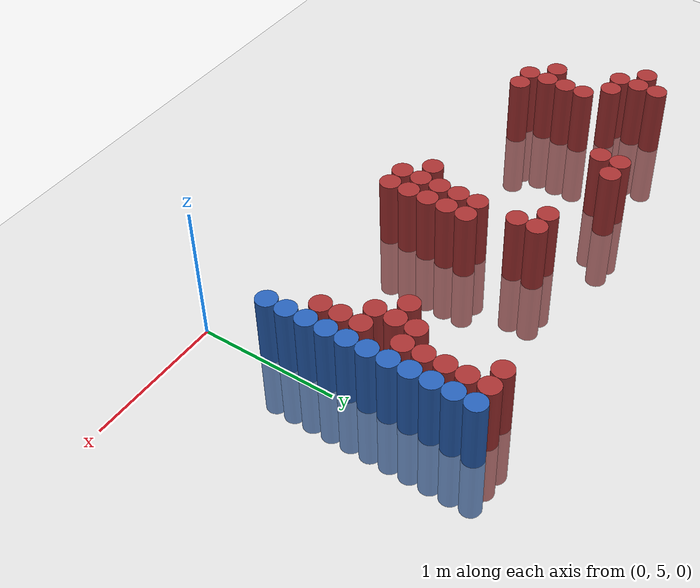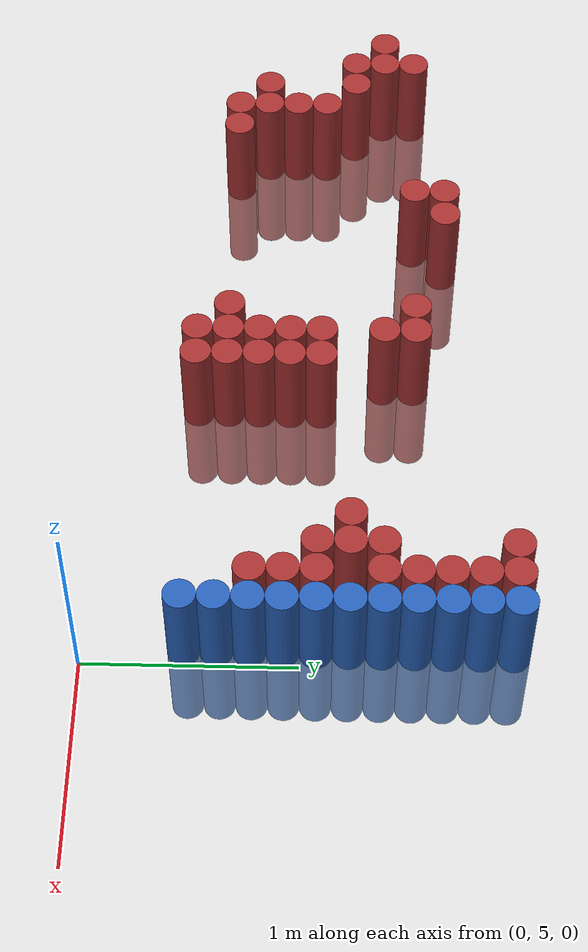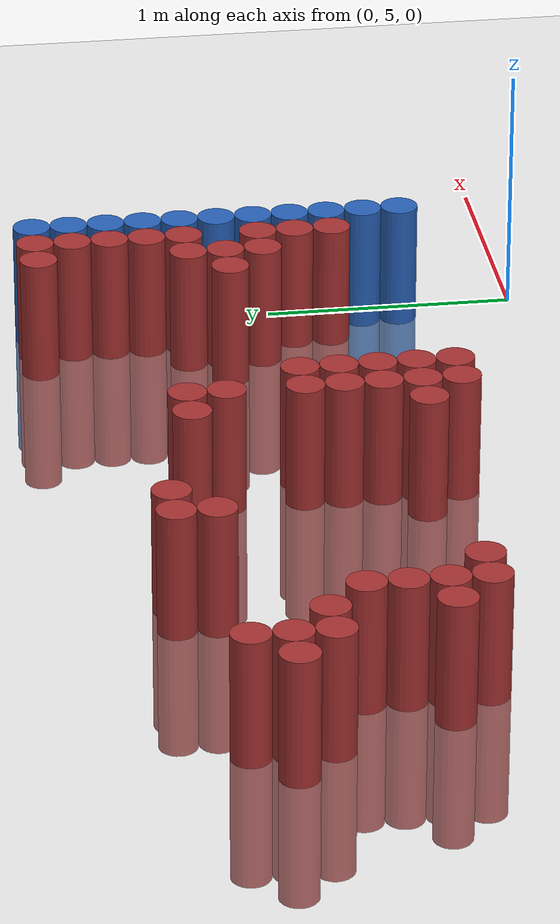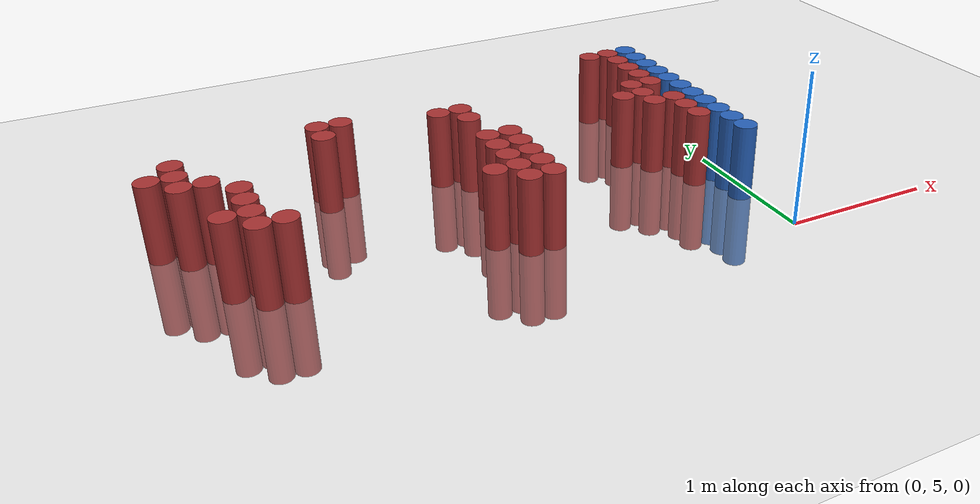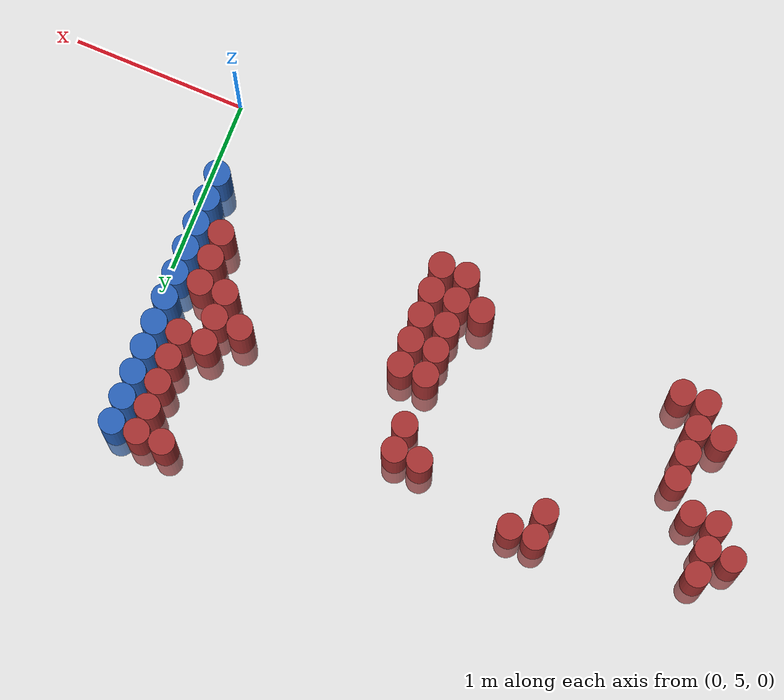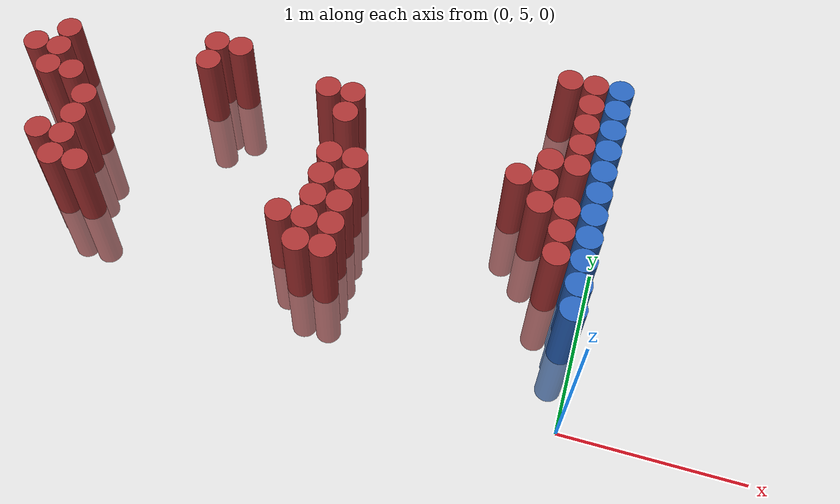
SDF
<sdf version="1.6">
 <world name="default">
  <model name="ground_plane">
   <static>1</static>
   <link name="link">
    <collision name="collision">
     <geometry><plane><normal>0 0 1</normal><size>100 100</size></plane></geometry>
     <surface><friction><ode><mu>100</mu><mu2>50</mu2></ode></friction></surface>
    </collision>
    <visual name="visual">
     <cast_shadows>0</cast_shadows>
     <geometry><plane><normal>0 0 1</normal><size>100 100</size></plane></geometry>
     <material>
      <script><uri>file://media/materials/scripts/gazebo.material</uri><name>Gazebo/Grey</name></script>
     </material>
    </visual>
   </link>
  </model>
  <model name="unit_cylinder_151">
   <static>1</static>
   <pose>-3.525000 6.375000 0.000000 0.000000 0.000000 0.000000</pose>
   <link name="link">
    <inertial>
     <mass>1</mass>
     <inertia><ixx>0.145833</ixx><ixy>0</ixy><ixz>0</ixz><iyy>0.145833</iyy><iyz>0</iyz><izz>0.125</izz></inertia>
    </inertial>
    <collision name="collision">
     <geometry><cylinder><radius>0.075000</radius><length>1</length></cylinder></geometry>
    </collision>
    <visual name="visual">
     <geometry><cylinder><radius>0.075000</radius><length>1</length></cylinder></geometry>
     <material>
      <ambient>0.648000 0.192000 0.192000 1</ambient>
      <diffuse>0.648000 0.192000 0.192000 1</diffuse>
     </material>
     <material>
      <script><name>Gazebo/Grey</name><uri>file://media/materials/scripts/gazebo.material</uri></script>
     </material>
    </visual>
   </link>
  </model>
  <model name="unit_cylinder_154">
   <static>1</static>
   <pose>-3.375000 6.225000 0.000000 0.000000 0.000000 0.000000</pose>
   <link name="link">
    <inertial>
     <mass>1</mass>
     <inertia><ixx>0.145833</ixx><ixy>0</ixy><ixz>0</ixz><iyy>0.145833</iyy><iyz>0</iyz><izz>0.125</izz></inertia>
    </inertial>
    <collision name="collision">
     <geometry><cylinder><radius>0.075000</radius><length>1</length></cylinder></geometry>
    </collision>
    <visual name="visual">
     <geometry><cylinder><radius>0.075000</radius><length>1</length></cylinder></geometry>
     <material>
      <ambient>0.648000 0.192000 0.192000 1</ambient>
      <diffuse>0.648000 0.192000 0.192000 1</diffuse>
     </material>
     <material>
      <script><name>Gazebo/Grey</name><uri>file://media/materials/scripts/gazebo.material</uri></script>
     </material>
    </visual>
   </link>
  </model>
  <model name="unit_cylinder_155">
   <static>1</static>
   <pose>-3.375000 6.375000 0.000000 0.000000 0.000000 0.000000</pose>
   <link name="link">
    <inertial>
     <mass>1</mass>
     <inertia><ixx>0.145833</ixx><ixy>0</ixy><ixz>0</ixz><iyy>0.145833</iyy><iyz>0</iyz><izz>0.125</izz></inertia>
    </inertial>
    <collision name="collision">
     <geometry><cylinder><radius>0.075000</radius><length>1</length></cylinder></geometry>
    </collision>
    <visual name="visual">
     <geometry><cylinder><radius>0.075000</radius><length>1</length></cylinder></geometry>
     <material>
      <ambient>0.648000 0.192000 0.192000 1</ambient>
      <diffuse>0.648000 0.192000 0.192000 1</diffuse>
     </material>
     <material>
      <script><name>Gazebo/Grey</name><uri>file://media/materials/scripts/gazebo.material</uri></script>
     </material>
    </visual>
   </link>
  </model>
  <model name="unit_cylinder_156">
   <static>1</static>
   <pose>-3.375000 6.525000 0.000000 0.000000 0.000000 0.000000</pose>
   <link name="link">
    <inertial>
     <mass>1</mass>
     <inertia><ixx>0.145833</ixx><ixy>0</ixy><ixz>0</ixz><iyy>0.145833</iyy><iyz>0</iyz><izz>0.125</izz></inertia>
    </inertial>
    <collision name="collision">
     <geometry><cylinder><radius>0.075000</radius><length>1</length></cylinder></geometry>
    </collision>
    <visual name="visual">
     <geometry><cylinder><radius>0.075000</radius><length>1</length></cylinder></geometry>
     <material>
      <ambient>0.648000 0.192000 0.192000 1</ambient>
      <diffuse>0.648000 0.192000 0.192000 1</diffuse>
     </material>
     <material>
      <script><name>Gazebo/Grey</name><uri>file://media/materials/scripts/gazebo.material</uri></script>
     </material>
    </visual>
   </link>
  </model>
  <model name="unit_cylinder_159">
   <static>1</static>
   <pose>-3.225000 5.775000 0.000000 0.000000 0.000000 0.000000</pose>
   <link name="link">
    <inertial>
     <mass>1</mass>
     <inertia><ixx>0.145833</ixx><ixy>0</ixy><ixz>0</ixz><iyy>0.145833</iyy><iyz>0</iyz><izz>0.125</izz></inertia>
    </inertial>
    <collision name="collision">
     <geometry><cylinder><radius>0.075000</radius><length>1</length></cylinder></geometry>
    </collision>
    <visual name="visual">
     <geometry><cylinder><radius>0.075000</radius><length>1</length></cylinder></geometry>
     <material>
      <ambient>0.648000 0.192000 0.192000 1</ambient>
      <diffuse>0.648000 0.192000 0.192000 1</diffuse>
     </material>
     <material>
      <script><name>Gazebo/Grey</name><uri>file://media/materials/scripts/gazebo.material</uri></script>
     </material>
    </visual>
   </link>
  </model>
  <model name="unit_cylinder_160">
   <static>1</static>
   <pose>-3.225000 6.225000 0.000000 0.000000 0.000000 0.000000</pose>
   <link name="link">
    <inertial>
     <mass>1</mass>
     <inertia><ixx>0.145833</ixx><ixy>0</ixy><ixz>0</ixz><iyy>0.145833</iyy><iyz>0</iyz><izz>0.125</izz></inertia>
    </inertial>
    <collision name="collision">
     <geometry><cylinder><radius>0.075000</radius><length>1</length></cylinder></geometry>
    </collision>
    <visual name="visual">
     <geometry><cylinder><radius>0.075000</radius><length>1</length></cylinder></geometry>
     <material>
      <ambient>0.648000 0.192000 0.192000 1</ambient>
      <diffuse>0.648000 0.192000 0.192000 1</diffuse>
     </material>
     <material>
      <script><name>Gazebo/Grey</name><uri>file://media/materials/scripts/gazebo.material</uri></script>
     </material>
    </visual>
   </link>
  </model>
  <model name="unit_cylinder_165">
   <static>1</static>
   <pose>-3.075000 5.625000 0.000000 0.000000 0.000000 0.000000</pose>
   <link name="link">
    <inertial>
     <mass>1</mass>
     <inertia><ixx>0.145833</ixx><ixy>0</ixy><ixz>0</ixz><iyy>0.145833</iyy><iyz>0</iyz><izz>0.125</izz></inertia>
    </inertial>
    <collision name="collision">
     <geometry><cylinder><radius>0.075000</radius><length>1</length></cylinder></geometry>
    </collision>
    <visual name="visual">
     <geometry><cylinder><radius>0.075000</radius><length>1</length></cylinder></geometry>
     <material>
      <ambient>0.648000 0.192000 0.192000 1</ambient>
      <diffuse>0.648000 0.192000 0.192000 1</diffuse>
     </material>
     <material>
      <script><name>Gazebo/Grey</name><uri>file://media/materials/scripts/gazebo.material</uri></script>
     </material>
    </visual>
   </link>
  </model>
  <model name="unit_cylinder_166">
   <static>1</static>
   <pose>-3.075000 5.775000 0.000000 0.000000 0.000000 0.000000</pose>
   <link name="link">
    <inertial>
     <mass>1</mass>
     <inertia><ixx>0.145833</ixx><ixy>0</ixy><ixz>0</ixz><iyy>0.145833</iyy><iyz>0</iyz><izz>0.125</izz></inertia>
    </inertial>
    <collision name="collision">
     <geometry><cylinder><radius>0.075000</radius><length>1</length></cylinder></geometry>
    </collision>
    <visual name="visual">
     <geometry><cylinder><radius>0.075000</radius><length>1</length></cylinder></geometry>
     <material>
      <ambient>0.648000 0.192000 0.192000 1</ambient>
      <diffuse>0.648000 0.192000 0.192000 1</diffuse>
     </material>
     <material>
      <script><name>Gazebo/Grey</name><uri>file://media/materials/scripts/gazebo.material</uri></script>
     </material>
    </visual>
   </link>
  </model>
  <model name="unit_cylinder_167">
   <static>1</static>
   <pose>-3.075000 5.925000 0.000000 0.000000 0.000000 0.000000</pose>
   <link name="link">
    <inertial>
     <mass>1</mass>
     <inertia><ixx>0.145833</ixx><ixy>0</ixy><ixz>0</ixz><iyy>0.145833</iyy><iyz>0</iyz><izz>0.125</izz></inertia>
    </inertial>
    <collision name="collision">
     <geometry><cylinder><radius>0.075000</radius><length>1</length></cylinder></geometry>
    </collision>
    <visual name="visual">
     <geometry><cylinder><radius>0.075000</radius><length>1</length></cylinder></geometry>
     <material>
      <ambient>0.648000 0.192000 0.192000 1</ambient>
      <diffuse>0.648000 0.192000 0.192000 1</diffuse>
     </material>
     <material>
      <script><name>Gazebo/Grey</name><uri>file://media/materials/scripts/gazebo.material</uri></script>
     </material>
    </visual>
   </link>
  </model>
  <model name="unit_cylinder_168">
   <static>1</static>
   <pose>-3.075000 6.075000 0.000000 0.000000 0.000000 0.000000</pose>
   <link name="link">
    <inertial>
     <mass>1</mass>
     <inertia><ixx>0.145833</ixx><ixy>0</ixy><ixz>0</ixz><iyy>0.145833</iyy><iyz>0</iyz><izz>0.125</izz></inertia>
    </inertial>
    <collision name="collision">
     <geometry><cylinder><radius>0.075000</radius><length>1</length></cylinder></geometry>
    </collision>
    <visual name="visual">
     <geometry><cylinder><radius>0.075000</radius><length>1</length></cylinder></geometry>
     <material>
      <ambient>0.648000 0.192000 0.192000 1</ambient>
      <diffuse>0.648000 0.192000 0.192000 1</diffuse>
     </material>
     <material>
      <script><name>Gazebo/Grey</name><uri>file://media/materials/scripts/gazebo.material</uri></script>
     </material>
    </visual>
   </link>
  </model>
  <model name="unit_cylinder_170">
   <static>1</static>
   <pose>-2.925000 5.625000 0.000000 0.000000 0.000000 0.000000</pose>
   <link name="link">
    <inertial>
     <mass>1</mass>
     <inertia><ixx>0.145833</ixx><ixy>0</ixy><ixz>0</ixz><iyy>0.145833</iyy><iyz>0</iyz><izz>0.125</izz></inertia>
    </inertial>
    <collision name="collision">
     <geometry><cylinder><radius>0.075000</radius><length>1</length></cylinder></geometry>
    </collision>
    <visual name="visual">
     <geometry><cylinder><radius>0.075000</radius><length>1</length></cylinder></geometry>
     <material>
      <ambient>0.648000 0.192000 0.192000 1</ambient>
      <diffuse>0.648000 0.192000 0.192000 1</diffuse>
     </material>
     <material>
      <script><name>Gazebo/Grey</name><uri>file://media/materials/scripts/gazebo.material</uri></script>
     </material>
    </visual>
   </link>
  </model>
  <model name="unit_cylinder_171">
   <static>1</static>
   <pose>-2.475000 6.525000 0.000000 0.000000 0.000000 0.000000</pose>
   <link name="link">
    <inertial>
     <mass>1</mass>
     <inertia><ixx>0.145833</ixx><ixy>0</ixy><ixz>0</ixz><iyy>0.145833</iyy><iyz>0</iyz><izz>0.125</izz></inertia>
    </inertial>
    <collision name="collision">
     <geometry><cylinder><radius>0.075000</radius><length>1</length></cylinder></geometry>
    </collision>
    <visual name="visual">
     <geometry><cylinder><radius>0.075000</radius><length>1</length></cylinder></geometry>
     <material>
      <ambient>0.648000 0.192000 0.192000 1</ambient>
      <diffuse>0.648000 0.192000 0.192000 1</diffuse>
     </material>
     <material>
      <script><name>Gazebo/Grey</name><uri>file://media/materials/scripts/gazebo.material</uri></script>
     </material>
    </visual>
   </link>
  </model>
  <model name="unit_cylinder_172">
   <static>1</static>
   <pose>-2.475000 6.675000 0.000000 0.000000 0.000000 0.000000</pose>
   <link name="link">
    <inertial>
     <mass>1</mass>
     <inertia><ixx>0.145833</ixx><ixy>0</ixy><ixz>0</ixz><iyy>0.145833</iyy><iyz>0</iyz><izz>0.125</izz></inertia>
    </inertial>
    <collision name="collision">
     <geometry><cylinder><radius>0.075000</radius><length>1</length></cylinder></geometry>
    </collision>
    <visual name="visual">
     <geometry><cylinder><radius>0.075000</radius><length>1</length></cylinder></geometry>
     <material>
      <ambient>0.648000 0.192000 0.192000 1</ambient>
      <diffuse>0.648000 0.192000 0.192000 1</diffuse>
     </material>
     <material>
      <script><name>Gazebo/Grey</name><uri>file://media/materials/scripts/gazebo.material</uri></script>
     </material>
    </visual>
   </link>
  </model>
  <model name="unit_cylinder_175">
   <static>1</static>
   <pose>-2.325000 6.675000 0.000000 0.000000 0.000000 0.000000</pose>
   <link name="link">
    <inertial>
     <mass>1</mass>
     <inertia><ixx>0.145833</ixx><ixy>0</ixy><ixz>0</ixz><iyy>0.145833</iyy><iyz>0</iyz><izz>0.125</izz></inertia>
    </inertial>
    <collision name="collision">
     <geometry><cylinder><radius>0.075000</radius><length>1</length></cylinder></geometry>
    </collision>
    <visual name="visual">
     <geometry><cylinder><radius>0.075000</radius><length>1</length></cylinder></geometry>
     <material>
      <ambient>0.648000 0.192000 0.192000 1</ambient>
      <diffuse>0.648000 0.192000 0.192000 1</diffuse>
     </material>
     <material>
      <script><name>Gazebo/Grey</name><uri>file://media/materials/scripts/gazebo.material</uri></script>
     </material>
    </visual>
   </link>
  </model>
  <model name="unit_cylinder_178">
   <static>1</static>
   <pose>-1.725000 5.625000 0.000000 0.000000 0.000000 0.000000</pose>
   <link name="link">
    <inertial>
     <mass>1</mass>
     <inertia><ixx>0.145833</ixx><ixy>0</ixy><ixz>0</ixz><iyy>0.145833</iyy><iyz>0</iyz><izz>0.125</izz></inertia>
    </inertial>
    <collision name="collision">
     <geometry><cylinder><radius>0.075000</radius><length>1</length></cylinder></geometry>
    </collision>
    <visual name="visual">
     <geometry><cylinder><radius>0.075000</radius><length>1</length></cylinder></geometry>
     <material>
      <ambient>0.648000 0.192000 0.192000 1</ambient>
      <diffuse>0.648000 0.192000 0.192000 1</diffuse>
     </material>
     <material>
      <script><name>Gazebo/Grey</name><uri>file://media/materials/scripts/gazebo.material</uri></script>
     </material>
    </visual>
   </link>
  </model>
  <model name="unit_cylinder_179">
   <static>1</static>
   <pose>-1.725000 6.525000 0.000000 0.000000 0.000000 0.000000</pose>
   <link name="link">
    <inertial>
     <mass>1</mass>
     <inertia><ixx>0.145833</ixx><ixy>0</ixy><ixz>0</ixz><iyy>0.145833</iyy><iyz>0</iyz><izz>0.125</izz></inertia>
    </inertial>
    <collision name="collision">
     <geometry><cylinder><radius>0.075000</radius><length>1</length></cylinder></geometry>
    </collision>
    <visual name="visual">
     <geometry><cylinder><radius>0.075000</radius><length>1</length></cylinder></geometry>
     <material>
      <ambient>0.648000 0.192000 0.192000 1</ambient>
      <diffuse>0.648000 0.192000 0.192000 1</diffuse>
     </material>
     <material>
      <script><name>Gazebo/Grey</name><uri>file://media/materials/scripts/gazebo.material</uri></script>
     </material>
    </visual>
   </link>
  </model>
  <model name="unit_cylinder_183">
   <static>1</static>
   <pose>-1.575000 5.475000 0.000000 0.000000 0.000000 0.000000</pose>
   <link name="link">
    <inertial>
     <mass>1</mass>
     <inertia><ixx>0.145833</ixx><ixy>0</ixy><ixz>0</ixz><iyy>0.145833</iyy><iyz>0</iyz><izz>0.125</izz></inertia>
    </inertial>
    <collision name="collision">
     <geometry><cylinder><radius>0.075000</radius><length>1</length></cylinder></geometry>
    </collision>
    <visual name="visual">
     <geometry><cylinder><radius>0.075000</radius><length>1</length></cylinder></geometry>
     <material>
      <ambient>0.648000 0.192000 0.192000 1</ambient>
      <diffuse>0.648000 0.192000 0.192000 1</diffuse>
     </material>
     <material>
      <script><name>Gazebo/Grey</name><uri>file://media/materials/scripts/gazebo.material</uri></script>
     </material>
    </visual>
   </link>
  </model>
  <model name="unit_cylinder_184">
   <static>1</static>
   <pose>-1.575000 5.625000 0.000000 0.000000 0.000000 0.000000</pose>
   <link name="link">
    <inertial>
     <mass>1</mass>
     <inertia><ixx>0.145833</ixx><ixy>0</ixy><ixz>0</ixz><iyy>0.145833</iyy><iyz>0</iyz><izz>0.125</izz></inertia>
    </inertial>
    <collision name="collision">
     <geometry><cylinder><radius>0.075000</radius><length>1</length></cylinder></geometry>
    </collision>
    <visual name="visual">
     <geometry><cylinder><radius>0.075000</radius><length>1</length></cylinder></geometry>
     <material>
      <ambient>0.648000 0.192000 0.192000 1</ambient>
      <diffuse>0.648000 0.192000 0.192000 1</diffuse>
     </material>
     <material>
      <script><name>Gazebo/Grey</name><uri>file://media/materials/scripts/gazebo.material</uri></script>
     </material>
    </visual>
   </link>
  </model>
  <model name="unit_cylinder_185">
   <static>1</static>
   <pose>-1.575000 5.775000 0.000000 0.000000 0.000000 0.000000</pose>
   <link name="link">
    <inertial>
     <mass>1</mass>
     <inertia><ixx>0.145833</ixx><ixy>0</ixy><ixz>0</ixz><iyy>0.145833</iyy><iyz>0</iyz><izz>0.125</izz></inertia>
    </inertial>
    <collision name="collision">
     <geometry><cylinder><radius>0.075000</radius><length>1</length></cylinder></geometry>
    </collision>
    <visual name="visual">
     <geometry><cylinder><radius>0.075000</radius><length>1</length></cylinder></geometry>
     <material>
      <ambient>0.648000 0.192000 0.192000 1</ambient>
      <diffuse>0.648000 0.192000 0.192000 1</diffuse>
     </material>
     <material>
      <script><name>Gazebo/Grey</name><uri>file://media/materials/scripts/gazebo.material</uri></script>
     </material>
    </visual>
   </link>
  </model>
  <model name="unit_cylinder_186">
   <static>1</static>
   <pose>-1.575000 5.925000 0.000000 0.000000 0.000000 0.000000</pose>
   <link name="link">
    <inertial>
     <mass>1</mass>
     <inertia><ixx>0.145833</ixx><ixy>0</ixy><ixz>0</ixz><iyy>0.145833</iyy><iyz>0</iyz><izz>0.125</izz></inertia>
    </inertial>
    <collision name="collision">
     <geometry><cylinder><radius>0.075000</radius><length>1</length></cylinder></geometry>
    </collision>
    <visual name="visual">
     <geometry><cylinder><radius>0.075000</radius><length>1</length></cylinder></geometry>
     <material>
      <ambient>0.648000 0.192000 0.192000 1</ambient>
      <diffuse>0.648000 0.192000 0.192000 1</diffuse>
     </material>
     <material>
      <script><name>Gazebo/Grey</name><uri>file://media/materials/scripts/gazebo.material</uri></script>
     </material>
    </visual>
   </link>
  </model>
  <model name="unit_cylinder_187">
   <static>1</static>
   <pose>-1.575000 6.075000 0.000000 0.000000 0.000000 0.000000</pose>
   <link name="link">
    <inertial>
     <mass>1</mass>
     <inertia><ixx>0.145833</ixx><ixy>0</ixy><ixz>0</ixz><iyy>0.145833</iyy><iyz>0</iyz><izz>0.125</izz></inertia>
    </inertial>
    <collision name="collision">
     <geometry><cylinder><radius>0.075000</radius><length>1</length></cylinder></geometry>
    </collision>
    <visual name="visual">
     <geometry><cylinder><radius>0.075000</radius><length>1</length></cylinder></geometry>
     <material>
      <ambient>0.648000 0.192000 0.192000 1</ambient>
      <diffuse>0.648000 0.192000 0.192000 1</diffuse>
     </material>
     <material>
      <script><name>Gazebo/Grey</name><uri>file://media/materials/scripts/gazebo.material</uri></script>
     </material>
    </visual>
   </link>
  </model>
  <model name="unit_cylinder_188">
   <static>1</static>
   <pose>-1.575000 6.375000 0.000000 0.000000 0.000000 0.000000</pose>
   <link name="link">
    <inertial>
     <mass>1</mass>
     <inertia><ixx>0.145833</ixx><ixy>0</ixy><ixz>0</ixz><iyy>0.145833</iyy><iyz>0</iyz><izz>0.125</izz></inertia>
    </inertial>
    <collision name="collision">
     <geometry><cylinder><radius>0.075000</radius><length>1</length></cylinder></geometry>
    </collision>
    <visual name="visual">
     <geometry><cylinder><radius>0.075000</radius><length>1</length></cylinder></geometry>
     <material>
      <ambient>0.648000 0.192000 0.192000 1</ambient>
      <diffuse>0.648000 0.192000 0.192000 1</diffuse>
     </material>
     <material>
      <script><name>Gazebo/Grey</name><uri>file://media/materials/scripts/gazebo.material</uri></script>
     </material>
    </visual>
   </link>
  </model>
  <model name="unit_cylinder_189">
   <static>1</static>
   <pose>-1.575000 6.525000 0.000000 0.000000 0.000000 0.000000</pose>
   <link name="link">
    <inertial>
     <mass>1</mass>
     <inertia><ixx>0.145833</ixx><ixy>0</ixy><ixz>0</ixz><iyy>0.145833</iyy><iyz>0</iyz><izz>0.125</izz></inertia>
    </inertial>
    <collision name="collision">
     <geometry><cylinder><radius>0.075000</radius><length>1</length></cylinder></geometry>
    </collision>
    <visual name="visual">
     <geometry><cylinder><radius>0.075000</radius><length>1</length></cylinder></geometry>
     <material>
      <ambient>0.648000 0.192000 0.192000 1</ambient>
      <diffuse>0.648000 0.192000 0.192000 1</diffuse>
     </material>
     <material>
      <script><name>Gazebo/Grey</name><uri>file://media/materials/scripts/gazebo.material</uri></script>
     </material>
    </visual>
   </link>
  </model>
  <model name="unit_cylinder_193">
   <static>1</static>
   <pose>-1.425000 5.475000 0.000000 0.000000 0.000000 0.000000</pose>
   <link name="link">
    <inertial>
     <mass>1</mass>
     <inertia><ixx>0.145833</ixx><ixy>0</ixy><ixz>0</ixz><iyy>0.145833</iyy><iyz>0</iyz><izz>0.125</izz></inertia>
    </inertial>
    <collision name="collision">
     <geometry><cylinder><radius>0.075000</radius><length>1</length></cylinder></geometry>
    </collision>
    <visual name="visual">
     <geometry><cylinder><radius>0.075000</radius><length>1</length></cylinder></geometry>
     <material>
      <ambient>0.648000 0.192000 0.192000 1</ambient>
      <diffuse>0.648000 0.192000 0.192000 1</diffuse>
     </material>
     <material>
      <script><name>Gazebo/Grey</name><uri>file://media/materials/scripts/gazebo.material</uri></script>
     </material>
    </visual>
   </link>
  </model>
  <model name="unit_cylinder_194">
   <static>1</static>
   <pose>-1.425000 5.625000 0.000000 0.000000 0.000000 0.000000</pose>
   <link name="link">
    <inertial>
     <mass>1</mass>
     <inertia><ixx>0.145833</ixx><ixy>0</ixy><ixz>0</ixz><iyy>0.145833</iyy><iyz>0</iyz><izz>0.125</izz></inertia>
    </inertial>
    <collision name="collision">
     <geometry><cylinder><radius>0.075000</radius><length>1</length></cylinder></geometry>
    </collision>
    <visual name="visual">
     <geometry><cylinder><radius>0.075000</radius><length>1</length></cylinder></geometry>
     <material>
      <ambient>0.648000 0.192000 0.192000 1</ambient>
      <diffuse>0.648000 0.192000 0.192000 1</diffuse>
     </material>
     <material>
      <script><name>Gazebo/Grey</name><uri>file://media/materials/scripts/gazebo.material</uri></script>
     </material>
    </visual>
   </link>
  </model>
  <model name="unit_cylinder_195">
   <static>1</static>
   <pose>-1.425000 5.775000 0.000000 0.000000 0.000000 0.000000</pose>
   <link name="link">
    <inertial>
     <mass>1</mass>
     <inertia><ixx>0.145833</ixx><ixy>0</ixy><ixz>0</ixz><iyy>0.145833</iyy><iyz>0</iyz><izz>0.125</izz></inertia>
    </inertial>
    <collision name="collision">
     <geometry><cylinder><radius>0.075000</radius><length>1</length></cylinder></geometry>
    </collision>
    <visual name="visual">
     <geometry><cylinder><radius>0.075000</radius><length>1</length></cylinder></geometry>
     <material>
      <ambient>0.648000 0.192000 0.192000 1</ambient>
      <diffuse>0.648000 0.192000 0.192000 1</diffuse>
     </material>
     <material>
      <script><name>Gazebo/Grey</name><uri>file://media/materials/scripts/gazebo.material</uri></script>
     </material>
    </visual>
   </link>
  </model>
  <model name="unit_cylinder_196">
   <static>1</static>
   <pose>-1.425000 5.925000 0.000000 0.000000 0.000000 0.000000</pose>
   <link name="link">
    <inertial>
     <mass>1</mass>
     <inertia><ixx>0.145833</ixx><ixy>0</ixy><ixz>0</ixz><iyy>0.145833</iyy><iyz>0</iyz><izz>0.125</izz></inertia>
    </inertial>
    <collision name="collision">
     <geometry><cylinder><radius>0.075000</radius><length>1</length></cylinder></geometry>
    </collision>
    <visual name="visual">
     <geometry><cylinder><radius>0.075000</radius><length>1</length></cylinder></geometry>
     <material>
      <ambient>0.648000 0.192000 0.192000 1</ambient>
      <diffuse>0.648000 0.192000 0.192000 1</diffuse>
     </material>
     <material>
      <script><name>Gazebo/Grey</name><uri>file://media/materials/scripts/gazebo.material</uri></script>
     </material>
    </visual>
   </link>
  </model>
  <model name="unit_cylinder_197">
   <static>1</static>
   <pose>-1.425000 6.075000 0.000000 0.000000 0.000000 0.000000</pose>
   <link name="link">
    <inertial>
     <mass>1</mass>
     <inertia><ixx>0.145833</ixx><ixy>0</ixy><ixz>0</ixz><iyy>0.145833</iyy><iyz>0</iyz><izz>0.125</izz></inertia>
    </inertial>
    <collision name="collision">
     <geometry><cylinder><radius>0.075000</radius><length>1</length></cylinder></geometry>
    </collision>
    <visual name="visual">
     <geometry><cylinder><radius>0.075000</radius><length>1</length></cylinder></geometry>
     <material>
      <ambient>0.648000 0.192000 0.192000 1</ambient>
      <diffuse>0.648000 0.192000 0.192000 1</diffuse>
     </material>
     <material>
      <script><name>Gazebo/Grey</name><uri>file://media/materials/scripts/gazebo.material</uri></script>
     </material>
    </visual>
   </link>
  </model>
  <model name="unit_cylinder_203">
   <static>1</static>
   <pose>-0.525000 6.225000 0.000000 0.000000 0.000000 0.000000</pose>
   <link name="link">
    <inertial>
     <mass>1</mass>
     <inertia><ixx>0.145833</ixx><ixy>0</ixy><ixz>0</ixz><iyy>0.145833</iyy><iyz>0</iyz><izz>0.125</izz></inertia>
    </inertial>
    <collision name="collision">
     <geometry><cylinder><radius>0.075000</radius><length>1</length></cylinder></geometry>
    </collision>
    <visual name="visual">
     <geometry><cylinder><radius>0.075000</radius><length>1</length></cylinder></geometry>
     <material>
      <ambient>0.648000 0.192000 0.192000 1</ambient>
      <diffuse>0.648000 0.192000 0.192000 1</diffuse>
     </material>
     <material>
      <script><name>Gazebo/Grey</name><uri>file://media/materials/scripts/gazebo.material</uri></script>
     </material>
    </visual>
   </link>
  </model>
  <model name="unit_cylinder_205">
   <static>1</static>
   <pose>-0.375000 6.075000 0.000000 0.000000 0.000000 0.000000</pose>
   <link name="link">
    <inertial>
     <mass>1</mass>
     <inertia><ixx>0.145833</ixx><ixy>0</ixy><ixz>0</ixz><iyy>0.145833</iyy><iyz>0</iyz><izz>0.125</izz></inertia>
    </inertial>
    <collision name="collision">
     <geometry><cylinder><radius>0.075000</radius><length>1</length></cylinder></geometry>
    </collision>
    <visual name="visual">
     <geometry><cylinder><radius>0.075000</radius><length>1</length></cylinder></geometry>
     <material>
      <ambient>0.648000 0.192000 0.192000 1</ambient>
      <diffuse>0.648000 0.192000 0.192000 1</diffuse>
     </material>
     <material>
      <script><name>Gazebo/Grey</name><uri>file://media/materials/scripts/gazebo.material</uri></script>
     </material>
    </visual>
   </link>
  </model>
  <model name="unit_cylinder_206">
   <static>1</static>
   <pose>-0.375000 6.225000 0.000000 0.000000 0.000000 0.000000</pose>
   <link name="link">
    <inertial>
     <mass>1</mass>
     <inertia><ixx>0.145833</ixx><ixy>0</ixy><ixz>0</ixz><iyy>0.145833</iyy><iyz>0</iyz><izz>0.125</izz></inertia>
    </inertial>
    <collision name="collision">
     <geometry><cylinder><radius>0.075000</radius><length>1</length></cylinder></geometry>
    </collision>
    <visual name="visual">
     <geometry><cylinder><radius>0.075000</radius><length>1</length></cylinder></geometry>
     <material>
      <ambient>0.648000 0.192000 0.192000 1</ambient>
      <diffuse>0.648000 0.192000 0.192000 1</diffuse>
     </material>
     <material>
      <script><name>Gazebo/Grey</name><uri>file://media/materials/scripts/gazebo.material</uri></script>
     </material>
    </visual>
   </link>
  </model>
  <model name="unit_cylinder_207">
   <static>1</static>
   <pose>-0.375000 6.375000 0.000000 0.000000 0.000000 0.000000</pose>
   <link name="link">
    <inertial>
     <mass>1</mass>
     <inertia><ixx>0.145833</ixx><ixy>0</ixy><ixz>0</ixz><iyy>0.145833</iyy><iyz>0</iyz><izz>0.125</izz></inertia>
    </inertial>
    <collision name="collision">
     <geometry><cylinder><radius>0.075000</radius><length>1</length></cylinder></geometry>
    </collision>
    <visual name="visual">
     <geometry><cylinder><radius>0.075000</radius><length>1</length></cylinder></geometry>
     <material>
      <ambient>0.648000 0.192000 0.192000 1</ambient>
      <diffuse>0.648000 0.192000 0.192000 1</diffuse>
     </material>
     <material>
      <script><name>Gazebo/Grey</name><uri>file://media/materials/scripts/gazebo.material</uri></script>
     </material>
    </visual>
   </link>
  </model>
  <model name="unit_cylinder_208">
   <static>1</static>
   <pose>-0.375000 6.975000 0.000000 0.000000 0.000000 0.000000</pose>
   <link name="link">
    <inertial>
     <mass>1</mass>
     <inertia><ixx>0.145833</ixx><ixy>0</ixy><ixz>0</ixz><iyy>0.145833</iyy><iyz>0</iyz><izz>0.125</izz></inertia>
    </inertial>
    <collision name="collision">
     <geometry><cylinder><radius>0.075000</radius><length>1</length></cylinder></geometry>
    </collision>
    <visual name="visual">
     <geometry><cylinder><radius>0.075000</radius><length>1</length></cylinder></geometry>
     <material>
      <ambient>0.648000 0.192000 0.192000 1</ambient>
      <diffuse>0.648000 0.192000 0.192000 1</diffuse>
     </material>
     <material>
      <script><name>Gazebo/Grey</name><uri>file://media/materials/scripts/gazebo.material</uri></script>
     </material>
    </visual>
   </link>
  </model>
  <model name="unit_cylinder_212">
   <static>1</static>
   <pose>-0.225000 5.775000 0.000000 0.000000 0.000000 0.000000</pose>
   <link name="link">
    <inertial>
     <mass>1</mass>
     <inertia><ixx>0.145833</ixx><ixy>0</ixy><ixz>0</ixz><iyy>0.145833</iyy><iyz>0</iyz><izz>0.125</izz></inertia>
    </inertial>
    <collision name="collision">
     <geometry><cylinder><radius>0.075000</radius><length>1</length></cylinder></geometry>
    </collision>
    <visual name="visual">
     <geometry><cylinder><radius>0.075000</radius><length>1</length></cylinder></geometry>
     <material>
      <ambient>0.648000 0.192000 0.192000 1</ambient>
      <diffuse>0.648000 0.192000 0.192000 1</diffuse>
     </material>
     <material>
      <script><name>Gazebo/Grey</name><uri>file://media/materials/scripts/gazebo.material</uri></script>
     </material>
    </visual>
   </link>
  </model>
  <model name="unit_cylinder_213">
   <static>1</static>
   <pose>-0.225000 5.925000 0.000000 0.000000 0.000000 0.000000</pose>
   <link name="link">
    <inertial>
     <mass>1</mass>
     <inertia><ixx>0.145833</ixx><ixy>0</ixy><ixz>0</ixz><iyy>0.145833</iyy><iyz>0</iyz><izz>0.125</izz></inertia>
    </inertial>
    <collision name="collision">
     <geometry><cylinder><radius>0.075000</radius><length>1</length></cylinder></geometry>
    </collision>
    <visual name="visual">
     <geometry><cylinder><radius>0.075000</radius><length>1</length></cylinder></geometry>
     <material>
      <ambient>0.648000 0.192000 0.192000 1</ambient>
      <diffuse>0.648000 0.192000 0.192000 1</diffuse>
     </material>
     <material>
      <script><name>Gazebo/Grey</name><uri>file://media/materials/scripts/gazebo.material</uri></script>
     </material>
    </visual>
   </link>
  </model>
  <model name="unit_cylinder_214">
   <static>1</static>
   <pose>-0.225000 6.075000 0.000000 0.000000 0.000000 0.000000</pose>
   <link name="link">
    <inertial>
     <mass>1</mass>
     <inertia><ixx>0.145833</ixx><ixy>0</ixy><ixz>0</ixz><iyy>0.145833</iyy><iyz>0</iyz><izz>0.125</izz></inertia>
    </inertial>
    <collision name="collision">
     <geometry><cylinder><radius>0.075000</radius><length>1</length></cylinder></geometry>
    </collision>
    <visual name="visual">
     <geometry><cylinder><radius>0.075000</radius><length>1</length></cylinder></geometry>
     <material>
      <ambient>0.648000 0.192000 0.192000 1</ambient>
      <diffuse>0.648000 0.192000 0.192000 1</diffuse>
     </material>
     <material>
      <script><name>Gazebo/Grey</name><uri>file://media/materials/scripts/gazebo.material</uri></script>
     </material>
    </visual>
   </link>
  </model>
  <model name="unit_cylinder_215">
   <static>1</static>
   <pose>-0.225000 6.375000 0.000000 0.000000 0.000000 0.000000</pose>
   <link name="link">
    <inertial>
     <mass>1</mass>
     <inertia><ixx>0.145833</ixx><ixy>0</ixy><ixz>0</ixz><iyy>0.145833</iyy><iyz>0</iyz><izz>0.125</izz></inertia>
    </inertial>
    <collision name="collision">
     <geometry><cylinder><radius>0.075000</radius><length>1</length></cylinder></geometry>
    </collision>
    <visual name="visual">
     <geometry><cylinder><radius>0.075000</radius><length>1</length></cylinder></geometry>
     <material>
      <ambient>0.648000 0.192000 0.192000 1</ambient>
      <diffuse>0.648000 0.192000 0.192000 1</diffuse>
     </material>
     <material>
      <script><name>Gazebo/Grey</name><uri>file://media/materials/scripts/gazebo.material</uri></script>
     </material>
    </visual>
   </link>
  </model>
  <model name="unit_cylinder_216">
   <static>1</static>
   <pose>-0.225000 6.525000 0.000000 0.000000 0.000000 0.000000</pose>
   <link name="link">
    <inertial>
     <mass>1</mass>
     <inertia><ixx>0.145833</ixx><ixy>0</ixy><ixz>0</ixz><iyy>0.145833</iyy><iyz>0</iyz><izz>0.125</izz></inertia>
    </inertial>
    <collision name="collision">
     <geometry><cylinder><radius>0.075000</radius><length>1</length></cylinder></geometry>
    </collision>
    <visual name="visual">
     <geometry><cylinder><radius>0.075000</radius><length>1</length></cylinder></geometry>
     <material>
      <ambient>0.648000 0.192000 0.192000 1</ambient>
      <diffuse>0.648000 0.192000 0.192000 1</diffuse>
     </material>
     <material>
      <script><name>Gazebo/Grey</name><uri>file://media/materials/scripts/gazebo.material</uri></script>
     </material>
    </visual>
   </link>
  </model>
  <model name="unit_cylinder_217">
   <static>1</static>
   <pose>-0.225000 6.675000 0.000000 0.000000 0.000000 0.000000</pose>
   <link name="link">
    <inertial>
     <mass>1</mass>
     <inertia><ixx>0.145833</ixx><ixy>0</ixy><ixz>0</ixz><iyy>0.145833</iyy><iyz>0</iyz><izz>0.125</izz></inertia>
    </inertial>
    <collision name="collision">
     <geometry><cylinder><radius>0.075000</radius><length>1</length></cylinder></geometry>
    </collision>
    <visual name="visual">
     <geometry><cylinder><radius>0.075000</radius><length>1</length></cylinder></geometry>
     <material>
      <ambient>0.648000 0.192000 0.192000 1</ambient>
      <diffuse>0.648000 0.192000 0.192000 1</diffuse>
     </material>
     <material>
      <script><name>Gazebo/Grey</name><uri>file://media/materials/scripts/gazebo.material</uri></script>
     </material>
    </visual>
   </link>
  </model>
  <model name="unit_cylinder_218">
   <static>1</static>
   <pose>-0.225000 6.825000 0.000000 0.000000 0.000000 0.000000</pose>
   <link name="link">
    <inertial>
     <mass>1</mass>
     <inertia><ixx>0.145833</ixx><ixy>0</ixy><ixz>0</ixz><iyy>0.145833</iyy><iyz>0</iyz><izz>0.125</izz></inertia>
    </inertial>
    <collision name="collision">
     <geometry><cylinder><radius>0.075000</radius><length>1</length></cylinder></geometry>
    </collision>
    <visual name="visual">
     <geometry><cylinder><radius>0.075000</radius><length>1</length></cylinder></geometry>
     <material>
      <ambient>0.648000 0.192000 0.192000 1</ambient>
      <diffuse>0.648000 0.192000 0.192000 1</diffuse>
     </material>
     <material>
      <script><name>Gazebo/Grey</name><uri>file://media/materials/scripts/gazebo.material</uri></script>
     </material>
    </visual>
   </link>
  </model>
  <model name="unit_cylinder_219">
   <static>1</static>
   <pose>-0.225000 6.975000 0.000000 0.000000 0.000000 0.000000</pose>
   <link name="link">
    <inertial>
     <mass>1</mass>
     <inertia><ixx>0.145833</ixx><ixy>0</ixy><ixz>0</ixz><iyy>0.145833</iyy><iyz>0</iyz><izz>0.125</izz></inertia>
    </inertial>
    <collision name="collision">
     <geometry><cylinder><radius>0.075000</radius><length>1</length></cylinder></geometry>
    </collision>
    <visual name="visual">
     <geometry><cylinder><radius>0.075000</radius><length>1</length></cylinder></geometry>
     <material>
      <ambient>0.648000 0.192000 0.192000 1</ambient>
      <diffuse>0.648000 0.192000 0.192000 1</diffuse>
     </material>
     <material>
      <script><name>Gazebo/Grey</name><uri>file://media/materials/scripts/gazebo.material</uri></script>
     </material>
    </visual>
   </link>
  </model>
  <model name="unit_cylinder_234">
   <static>1</static>
   <pose>-0.075000 5.475000 0.000000 0.000000 0.000000 0.000000</pose>
   <link name="link">
    <inertial>
     <mass>1</mass>
     <inertia><ixx>0.145833</ixx><ixy>0</ixy><ixz>0</ixz><iyy>0.145833</iyy><iyz>0</iyz><izz>0.125</izz></inertia>
    </inertial>
    <collision name="collision">
     <geometry><cylinder><radius>0.075000</radius><length>1</length></cylinder></geometry>
    </collision>
    <visual name="visual">
     <geometry><cylinder><radius>0.075000</radius><length>1</length></cylinder></geometry>
     <material>
      <ambient>0.152000 0.379000 0.720000 1</ambient>
      <diffuse>0.152000 0.379000 0.720000 1</diffuse>
     </material>
     <material>
      <script><name>Gazebo/Grey</name><uri>file://media/materials/scripts/gazebo.material</uri></script>
     </material>
    </visual>
   </link>
  </model>
  <model name="unit_cylinder_235">
   <static>1</static>
   <pose>-0.075000 5.625000 0.000000 0.000000 0.000000 0.000000</pose>
   <link name="link">
    <inertial>
     <mass>1</mass>
     <inertia><ixx>0.145833</ixx><ixy>0</ixy><ixz>0</ixz><iyy>0.145833</iyy><iyz>0</iyz><izz>0.125</izz></inertia>
    </inertial>
    <collision name="collision">
     <geometry><cylinder><radius>0.075000</radius><length>1</length></cylinder></geometry>
    </collision>
    <visual name="visual">
     <geometry><cylinder><radius>0.075000</radius><length>1</length></cylinder></geometry>
     <material>
      <ambient>0.152000 0.379000 0.720000 1</ambient>
      <diffuse>0.152000 0.379000 0.720000 1</diffuse>
     </material>
     <material>
      <script><name>Gazebo/Grey</name><uri>file://media/materials/scripts/gazebo.material</uri></script>
     </material>
    </visual>
   </link>
  </model>
  <model name="unit_cylinder_236">
   <static>1</static>
   <pose>-0.075000 5.775000 0.000000 0.000000 0.000000 0.000000</pose>
   <link name="link">
    <inertial>
     <mass>1</mass>
     <inertia><ixx>0.145833</ixx><ixy>0</ixy><ixz>0</ixz><iyy>0.145833</iyy><iyz>0</iyz><izz>0.125</izz></inertia>
    </inertial>
    <collision name="collision">
     <geometry><cylinder><radius>0.075000</radius><length>1</length></cylinder></geometry>
    </collision>
    <visual name="visual">
     <geometry><cylinder><radius>0.075000</radius><length>1</length></cylinder></geometry>
     <material>
      <ambient>0.152000 0.379000 0.720000 1</ambient>
      <diffuse>0.152000 0.379000 0.720000 1</diffuse>
     </material>
     <material>
      <script><name>Gazebo/Grey</name><uri>file://media/materials/scripts/gazebo.material</uri></script>
     </material>
    </visual>
   </link>
  </model>
  <model name="unit_cylinder_237">
   <static>1</static>
   <pose>-0.075000 5.925000 0.000000 0.000000 0.000000 0.000000</pose>
   <link name="link">
    <inertial>
     <mass>1</mass>
     <inertia><ixx>0.145833</ixx><ixy>0</ixy><ixz>0</ixz><iyy>0.145833</iyy><iyz>0</iyz><izz>0.125</izz></inertia>
    </inertial>
    <collision name="collision">
     <geometry><cylinder><radius>0.075000</radius><length>1</length></cylinder></geometry>
    </collision>
    <visual name="visual">
     <geometry><cylinder><radius>0.075000</radius><length>1</length></cylinder></geometry>
     <material>
      <ambient>0.152000 0.379000 0.720000 1</ambient>
      <diffuse>0.152000 0.379000 0.720000 1</diffuse>
     </material>
     <material>
      <script><name>Gazebo/Grey</name><uri>file://media/materials/scripts/gazebo.material</uri></script>
     </material>
    </visual>
   </link>
  </model>
  <model name="unit_cylinder_238">
   <static>1</static>
   <pose>-0.075000 6.075000 0.000000 0.000000 0.000000 0.000000</pose>
   <link name="link">
    <inertial>
     <mass>1</mass>
     <inertia><ixx>0.145833</ixx><ixy>0</ixy><ixz>0</ixz><iyy>0.145833</iyy><iyz>0</iyz><izz>0.125</izz></inertia>
    </inertial>
    <collision name="collision">
     <geometry><cylinder><radius>0.075000</radius><length>1</length></cylinder></geometry>
    </collision>
    <visual name="visual">
     <geometry><cylinder><radius>0.075000</radius><length>1</length></cylinder></geometry>
     <material>
      <ambient>0.152000 0.379000 0.720000 1</ambient>
      <diffuse>0.152000 0.379000 0.720000 1</diffuse>
     </material>
     <material>
      <script><name>Gazebo/Grey</name><uri>file://media/materials/scripts/gazebo.material</uri></script>
     </material>
    </visual>
   </link>
  </model>
  <model name="unit_cylinder_239">
   <static>1</static>
   <pose>-0.075000 6.225000 0.000000 0.000000 0.000000 0.000000</pose>
   <link name="link">
    <inertial>
     <mass>1</mass>
     <inertia><ixx>0.145833</ixx><ixy>0</ixy><ixz>0</ixz><iyy>0.145833</iyy><iyz>0</iyz><izz>0.125</izz></inertia>
    </inertial>
    <collision name="collision">
     <geometry><cylinder><radius>0.075000</radius><length>1</length></cylinder></geometry>
    </collision>
    <visual name="visual">
     <geometry><cylinder><radius>0.075000</radius><length>1</length></cylinder></geometry>
     <material>
      <ambient>0.152000 0.379000 0.720000 1</ambient>
      <diffuse>0.152000 0.379000 0.720000 1</diffuse>
     </material>
     <material>
      <script><name>Gazebo/Grey</name><uri>file://media/materials/scripts/gazebo.material</uri></script>
     </material>
    </visual>
   </link>
  </model>
  <model name="unit_cylinder_240">
   <static>1</static>
   <pose>-0.075000 6.375000 0.000000 0.000000 0.000000 0.000000</pose>
   <link name="link">
    <inertial>
     <mass>1</mass>
     <inertia><ixx>0.145833</ixx><ixy>0</ixy><ixz>0</ixz><iyy>0.145833</iyy><iyz>0</iyz><izz>0.125</izz></inertia>
    </inertial>
    <collision name="collision">
     <geometry><cylinder><radius>0.075000</radius><length>1</length></cylinder></geometry>
    </collision>
    <visual name="visual">
     <geometry><cylinder><radius>0.075000</radius><length>1</length></cylinder></geometry>
     <material>
      <ambient>0.152000 0.379000 0.720000 1</ambient>
      <diffuse>0.152000 0.379000 0.720000 1</diffuse>
     </material>
     <material>
      <script><name>Gazebo/Grey</name><uri>file://media/materials/scripts/gazebo.material</uri></script>
     </material>
    </visual>
   </link>
  </model>
  <model name="unit_cylinder_241">
   <static>1</static>
   <pose>-0.075000 6.525000 0.000000 0.000000 0.000000 0.000000</pose>
   <link name="link">
    <inertial>
     <mass>1</mass>
     <inertia><ixx>0.145833</ixx><ixy>0</ixy><ixz>0</ixz><iyy>0.145833</iyy><iyz>0</iyz><izz>0.125</izz></inertia>
    </inertial>
    <collision name="collision">
     <geometry><cylinder><radius>0.075000</radius><length>1</length></cylinder></geometry>
    </collision>
    <visual name="visual">
     <geometry><cylinder><radius>0.075000</radius><length>1</length></cylinder></geometry>
     <material>
      <ambient>0.152000 0.379000 0.720000 1</ambient>
      <diffuse>0.152000 0.379000 0.720000 1</diffuse>
     </material>
     <material>
      <script><name>Gazebo/Grey</name><uri>file://media/materials/scripts/gazebo.material</uri></script>
     </material>
    </visual>
   </link>
  </model>
  <model name="unit_cylinder_242">
   <static>1</static>
   <pose>-0.075000 6.675000 0.000000 0.000000 0.000000 0.000000</pose>
   <link name="link">
    <inertial>
     <mass>1</mass>
     <inertia><ixx>0.145833</ixx><ixy>0</ixy><ixz>0</ixz><iyy>0.145833</iyy><iyz>0</iyz><izz>0.125</izz></inertia>
    </inertial>
    <collision name="collision">
     <geometry><cylinder><radius>0.075000</radius><length>1</length></cylinder></geometry>
    </collision>
    <visual name="visual">
     <geometry><cylinder><radius>0.075000</radius><length>1</length></cylinder></geometry>
     <material>
      <ambient>0.152000 0.379000 0.720000 1</ambient>
      <diffuse>0.152000 0.379000 0.720000 1</diffuse>
     </material>
     <material>
      <script><name>Gazebo/Grey</name><uri>file://media/materials/scripts/gazebo.material</uri></script>
     </material>
    </visual>
   </link>
  </model>
  <model name="unit_cylinder_243">
   <static>1</static>
   <pose>-0.075000 6.825000 0.000000 0.000000 0.000000 0.000000</pose>
   <link name="link">
    <inertial>
     <mass>1</mass>
     <inertia><ixx>0.145833</ixx><ixy>0</ixy><ixz>0</ixz><iyy>0.145833</iyy><iyz>0</iyz><izz>0.125</izz></inertia>
    </inertial>
    <collision name="collision">
     <geometry><cylinder><radius>0.075000</radius><length>1</length></cylinder></geometry>
    </collision>
    <visual name="visual">
     <geometry><cylinder><radius>0.075000</radius><length>1</length></cylinder></geometry>
     <material>
      <ambient>0.152000 0.379000 0.720000 1</ambient>
      <diffuse>0.152000 0.379000 0.720000 1</diffuse>
     </material>
     <material>
      <script><name>Gazebo/Grey</name><uri>file://media/materials/scripts/gazebo.material</uri></script>
     </material>
    </visual>
   </link>
  </model>
  <model name="unit_cylinder_244">
   <static>1</static>
   <pose>-0.075000 6.975000 0.000000 0.000000 0.000000 0.000000</pose>
   <link name="link">
    <inertial>
     <mass>1</mass>
     <inertia><ixx>0.145833</ixx><ixy>0</ixy><ixz>0</ixz><iyy>0.145833</iyy><iyz>0</iyz><izz>0.125</izz></inertia>
    </inertial>
    <collision name="collision">
     <geometry><cylinder><radius>0.075000</radius><length>1</length></cylinder></geometry>
    </collision>
    <visual name="visual">
     <geometry><cylinder><radius>0.075000</radius><length>1</length></cylinder></geometry>
     <material>
      <ambient>0.152000 0.379000 0.720000 1</ambient>
      <diffuse>0.152000 0.379000 0.720000 1</diffuse>
     </material>
     <material>
      <script><name>Gazebo/Grey</name><uri>file://media/materials/scripts/gazebo.material</uri></script>
     </material>
    </visual>
   </link>
  </model>
 </world>
</sdf>
